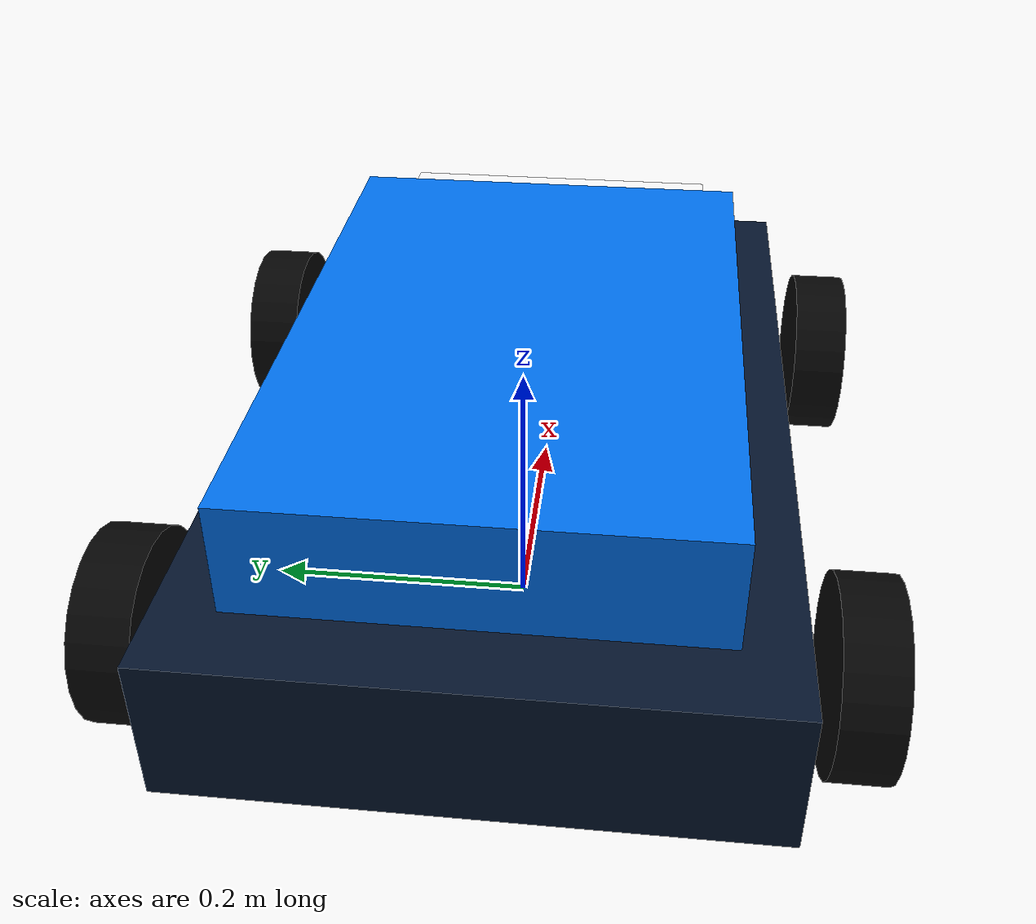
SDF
<?xml version="1.0"?>
<sdf version="1.9">
  <model name="qcar_planb">
    <pose>0 0 0.12 0 0 0</pose>

    <link name="base_link">
      <inertial>
        <mass>5.0</mass>
        <inertia><ixx>0.18</ixx><iyy>0.22</iyy><izz>0.28</izz></inertia>
      </inertial>
      <collision name="body_collision">
        <geometry><box><size>0.58 0.36 0.16</size></box></geometry>
      </collision>
      <visual name="lower_chassis">
        <pose>0 0 0.02 0 0 0</pose>
        <geometry><box><size>0.62 0.38 0.10</size></box></geometry>
        <material><ambient>0.02 0.08 0.18 1</ambient><diffuse>0.02 0.08 0.18 1</diffuse></material>
      </visual>
      <visual name="top_cover">
        <pose>-0.03 0 0.105 0 0 0</pose>
        <geometry><box><size>0.46 0.30 0.08</size></box></geometry>
        <material><ambient>0.0 0.45 0.95 1</ambient><diffuse>0.0 0.45 0.95 1</diffuse></material>
      </visual>
      <visual name="front_marker">
        <pose>0.31 0 0.08 0 0 0</pose>
        <geometry><box><size>0.02 0.26 0.04</size></box></geometry>
        <material><ambient>1 1 1 1</ambient><diffuse>1 1 1 1</diffuse></material>
      </visual>
    </link>

    <link name="front_left_wheel">
      <pose>0.20 0.23 0.0 1.5708 0 0</pose>
      <collision name="collision"><geometry><cylinder><radius>0.065</radius><length>0.04</length></cylinder></geometry></collision>
      <visual name="visual"><geometry><cylinder><radius>0.065</radius><length>0.04</length></cylinder></geometry><material><ambient>0.02 0.02 0.02 1</ambient><diffuse>0.02 0.02 0.02 1</diffuse></material></visual>
    </link>
    <link name="rear_left_wheel">
      <pose>-0.20 0.23 0.0 1.5708 0 0</pose>
      <collision name="collision"><geometry><cylinder><radius>0.065</radius><length>0.04</length></cylinder></geometry></collision>
      <visual name="visual"><geometry><cylinder><radius>0.065</radius><length>0.04</length></cylinder></geometry><material><ambient>0.02 0.02 0.02 1</ambient><diffuse>0.02 0.02 0.02 1</diffuse></material></visual>
    </link>
    <link name="front_right_wheel">
      <pose>0.20 -0.23 0.0 1.5708 0 0</pose>
      <collision name="collision"><geometry><cylinder><radius>0.065</radius><length>0.04</length></cylinder></geometry></collision>
      <visual name="visual"><geometry><cylinder><radius>0.065</radius><length>0.04</length></cylinder></geometry><material><ambient>0.02 0.02 0.02 1</ambient><diffuse>0.02 0.02 0.02 1</diffuse></material></visual>
    </link>
    <link name="rear_right_wheel">
      <pose>-0.20 -0.23 0.0 1.5708 0 0</pose>
      <collision name="collision"><geometry><cylinder><radius>0.065</radius><length>0.04</length></cylinder></geometry></collision>
      <visual name="visual"><geometry><cylinder><radius>0.065</radius><length>0.04</length></cylinder></geometry><material><ambient>0.02 0.02 0.02 1</ambient><diffuse>0.02 0.02 0.02 1</diffuse></material></visual>
    </link>

    <joint name="front_left_wheel_joint" type="revolute"><parent>base_link</parent><child>front_left_wheel</child><axis><xyz>0 0 1</xyz></axis></joint>
    <joint name="rear_left_wheel_joint" type="revolute"><parent>base_link</parent><child>rear_left_wheel</child><axis><xyz>0 0 1</xyz></axis></joint>
    <joint name="front_right_wheel_joint" type="revolute"><parent>base_link</parent><child>front_right_wheel</child><axis><xyz>0 0 1</xyz></axis></joint>
    <joint name="rear_right_wheel_joint" type="revolute"><parent>base_link</parent><child>rear_right_wheel</child><axis><xyz>0 0 1</xyz></axis></joint>

    <link name="lidar_link">
      <pose>0.12 0 0.23 0 0 0</pose>
      <sensor name="lidar" type="gpu_lidar">
        <topic>/qcar/scan</topic>
        <update_rate>10</update_rate>
        <ray>
          <scan><horizontal><samples>720</samples><resolution>1</resolution><min_angle>-3.14159</min_angle><max_angle>3.14159</max_angle></horizontal></scan>
          <range><min>0.08</min><max>12.0</max><resolution>0.01</resolution></range>
        </ray>
        <always_on>true</always_on>
        <visualize>true</visualize>
      </sensor>
    </link>
    <joint name="lidar_joint" type="fixed"><parent>base_link</parent><child>lidar_link</child></joint>

    <link name="camera_link">
      <pose>0.31 0 0.20 0 0 0</pose>
      <sensor name="front_camera" type="camera">
        <topic>/qcar/camera/image_raw</topic>
        <update_rate>15</update_rate>
        <camera>
          <horizontal_fov>1.047</horizontal_fov>
          <image><width>640</width><height>480</height><format>R8G8B8</format></image>
          <clip><near>0.05</near><far>50</far></clip>
        </camera>
        <always_on>true</always_on>
        <visualize>true</visualize>
      </sensor>
    </link>
    <joint name="camera_joint" type="fixed"><parent>base_link</parent><child>camera_link</child></joint>

    <plugin filename="gz-sim-diff-drive-system" name="gz::sim::systems::DiffDrive">
      <left_joint>front_left_wheel_joint</left_joint>
      <left_joint>rear_left_wheel_joint</left_joint>
      <right_joint>front_right_wheel_joint</right_joint>
      <right_joint>rear_right_wheel_joint</right_joint>
      <wheel_separation>0.46</wheel_separation>
      <wheel_radius>0.065</wheel_radius>
      <topic>/qcar/cmd_vel</topic>
      <odom_topic>/qcar/odom</odom_topic>
      <tf_topic>/tf</tf_topic>
      <frame_id>odom</frame_id>
      <child_frame_id>base_link</child_frame_id>
      <odom_publish_frequency>30</odom_publish_frequency>
    </plugin>
  </model>
</sdf>
